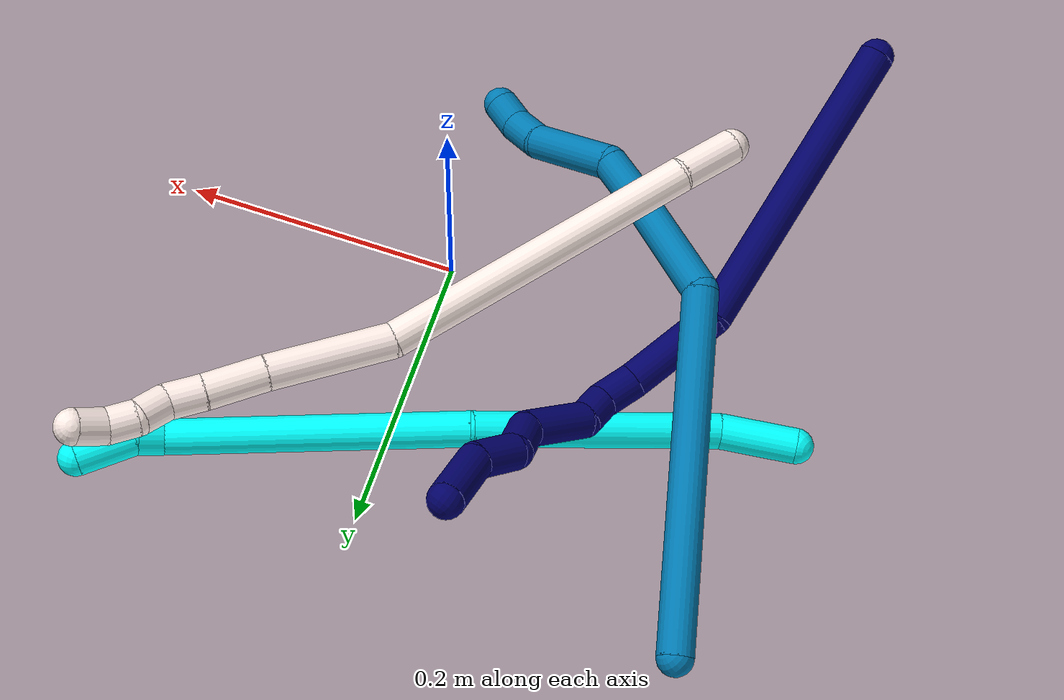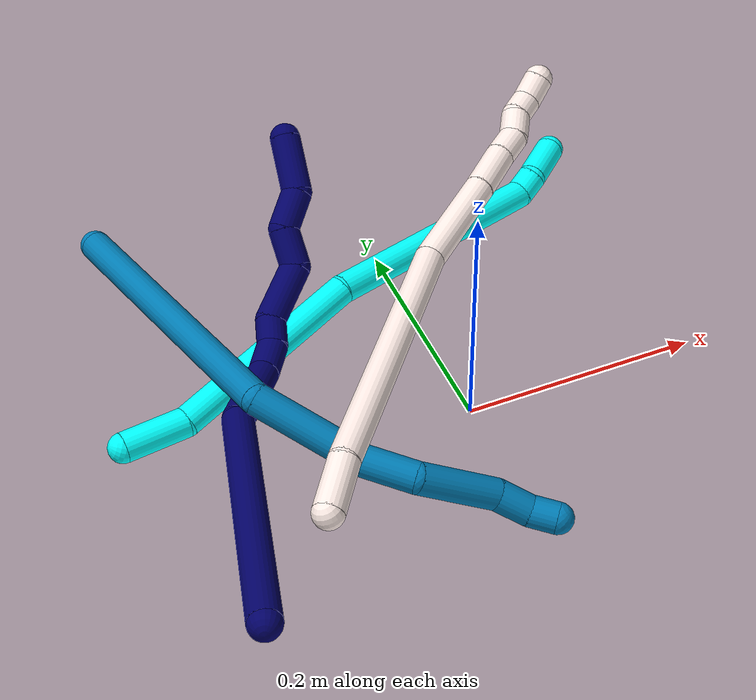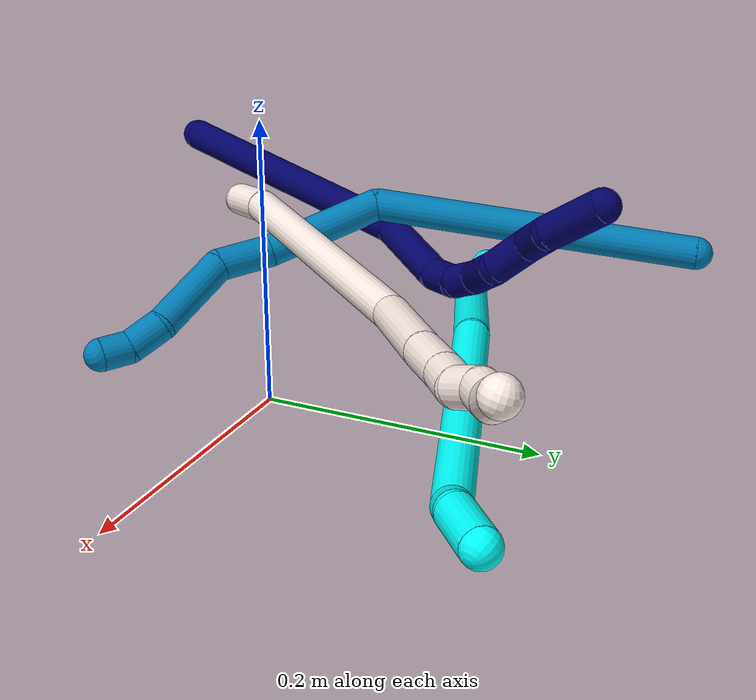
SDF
<sdf version="1.7">
 <world name="default">
  <model name="3">
   <static>0</static>
   <link name="3">
    <collision name="collision-cylinder-e_1_1_4">
     <pose>0.011632 0.007755 0.022831 -0.327449 0.449477 -0.075495</pose>
     <geometry><cylinder><radius>0.0125</radius><length>0.053542</length></cylinder></geometry>
     <surface>
      <friction><ode><mu>1.16</mu><mu2>1.16</mu2><slip1>0</slip1><slip2>0</slip2></ode></friction>
      <contact><ode><kp>1e+06</kp><kd>1</kd><max_vel>0</max_vel><min_depth>0.001</min_depth></ode></contact>
     </surface>
    </collision>
    <visual name="visual-cylinder-e_1_1_4">
     <pose>0.011632 0.007755 0.022831 -0.327449 0.449477 -0.075495</pose>
     <geometry><cylinder><radius>0.0125</radius><length>0.053542</length></cylinder></geometry>
     <material><ambient>0.003922 1 0.996078 1</ambient></material>
    </visual>
    <collision name="collision-cylinder-e_2_4_5">
     <pose>0.081481 0.044923 0.102981 -0.474108 0.734822 -0.185442</pose>
     <geometry><cylinder><radius>0.0125</radius><length>0.173663</length></cylinder></geometry>
     <surface>
      <friction><ode><mu>1.16</mu><mu2>1.16</mu2><slip1>0</slip1><slip2>0</slip2></ode></friction>
      <contact><ode><kp>1e+06</kp><kd>1</kd><max_vel>0</max_vel><min_depth>0.001</min_depth></ode></contact>
     </surface>
    </collision>
    <visual name="visual-cylinder-e_2_4_5">
     <pose>0.081481 0.044923 0.102981 -0.474108 0.734822 -0.185442</pose>
     <geometry><cylinder><radius>0.0125</radius><length>0.173663</length></cylinder></geometry>
     <material><ambient>0.003922 1 0.996078 1</ambient></material>
    </visual>
    <collision name="collision-cylinder-e_3_5_6">
     <pose>0.202326 0.090208 0.243627 -0.18822 0.635986 -0.062119</pose>
     <geometry><cylinder><radius>0.0125</radius><length>0.210882</length></cylinder></geometry>
     <surface>
      <friction><ode><mu>1.16</mu><mu2>1.16</mu2><slip1>0</slip1><slip2>0</slip2></ode></friction>
      <contact><ode><kp>1e+06</kp><kd>1</kd><max_vel>0</max_vel><min_depth>0.001</min_depth></ode></contact>
     </surface>
    </collision>
    <visual name="visual-cylinder-e_3_5_6">
     <pose>0.202326 0.090208 0.243627 -0.18822 0.635986 -0.062119</pose>
     <geometry><cylinder><radius>0.0125</radius><length>0.210882</length></cylinder></geometry>
     <material><ambient>0.003922 1 0.996078 1</ambient></material>
    </visual>
    <collision name="collision-cylinder-e_4_6_7">
     <pose>0.272541 0.110933 0.331905 -0.775597 0.830396 -0.356321</pose>
     <geometry><cylinder><radius>0.0125</radius><length>0.020552</length></cylinder></geometry>
     <surface>
      <friction><ode><mu>1.16</mu><mu2>1.16</mu2><slip1>0</slip1><slip2>0</slip2></ode></friction>
      <contact><ode><kp>1e+06</kp><kd>1</kd><max_vel>0</max_vel><min_depth>0.001</min_depth></ode></contact>
     </surface>
    </collision>
    <visual name="visual-cylinder-e_4_6_7">
     <pose>0.272541 0.110933 0.331905 -0.775597 0.830396 -0.356321</pose>
     <geometry><cylinder><radius>0.0125</radius><length>0.020552</length></cylinder></geometry>
     <material><ambient>0.003922 1 0.996078 1</ambient></material>
    </visual>
    <collision name="collision-cylinder-e_5_7_2">
     <pose>0.297929 0.117617 0.347217 -0.174827 1.03691 -0.099913</pose>
     <geometry><cylinder><radius>0.0125</radius><length>0.04136</length></cylinder></geometry>
     <surface>
      <friction><ode><mu>1.16</mu><mu2>1.16</mu2><slip1>0</slip1><slip2>0</slip2></ode></friction>
      <contact><ode><kp>1e+06</kp><kd>1</kd><max_vel>0</max_vel><min_depth>0.001</min_depth></ode></contact>
     </surface>
    </collision>
    <visual name="visual-cylinder-e_5_7_2">
     <pose>0.297929 0.117617 0.347217 -0.174827 1.03691 -0.099913</pose>
     <geometry><cylinder><radius>0.0125</radius><length>0.04136</length></cylinder></geometry>
     <material><ambient>0.003922 1 0.996078 1</ambient></material>
    </visual>
    <collision name="collision-sphere-2">
     <pose>0.315731 0.119447 0.357581 0 -0 0</pose>
     <geometry><sphere><radius>0.0125</radius></sphere></geometry>
     <surface>
      <friction><ode><mu>1.16</mu><mu2>1.16</mu2><slip1>0</slip1><slip2>0</slip2></ode></friction>
      <contact><ode><kp>1e+06</kp><kd>1</kd><max_vel>0</max_vel><min_depth>0.001</min_depth></ode></contact>
     </surface>
    </collision>
    <visual name="visual-sphere-2">
     <pose>0.315731 0.119447 0.357581 0 -0 0</pose>
     <geometry><sphere><radius>0.0125</radius></sphere></geometry>
     <material><ambient>0.003922 1 0.996078 1</ambient></material>
    </visual>
    <collision name="collision-sphere-7">
     <pose>0.280127 0.115786 0.336854 0 -0 0</pose>
     <geometry><sphere><radius>0.0125</radius></sphere></geometry>
     <surface>
      <friction><ode><mu>1.16</mu><mu2>1.16</mu2><slip1>0</slip1><slip2>0</slip2></ode></friction>
      <contact><ode><kp>1e+06</kp><kd>1</kd><max_vel>0</max_vel><min_depth>0.001</min_depth></ode></contact>
     </surface>
    </collision>
    <visual name="visual-sphere-7">
     <pose>0.280127 0.115786 0.336854 0 -0 0</pose>
     <geometry><sphere><radius>0.0125</radius></sphere></geometry>
     <material><ambient>0.003922 1 0.996078 1</ambient></material>
    </visual>
    <collision name="collision-sphere-6">
     <pose>0.264955 0.106079 0.326955 0 -0 0</pose>
     <geometry><sphere><radius>0.0125</radius></sphere></geometry>
     <surface>
      <friction><ode><mu>1.16</mu><mu2>1.16</mu2><slip1>0</slip1><slip2>0</slip2></ode></friction>
      <contact><ode><kp>1e+06</kp><kd>1</kd><max_vel>0</max_vel><min_depth>0.001</min_depth></ode></contact>
     </surface>
    </collision>
    <visual name="visual-sphere-6">
     <pose>0.264955 0.106079 0.326955 0 -0 0</pose>
     <geometry><sphere><radius>0.0125</radius></sphere></geometry>
     <material><ambient>0.003922 1 0.996078 1</ambient></material>
    </visual>
    <collision name="collision-sphere-5">
     <pose>0.139697 0.074336 0.160299 0 -0 0</pose>
     <geometry><sphere><radius>0.0125</radius></sphere></geometry>
     <surface>
      <friction><ode><mu>1.16</mu><mu2>1.16</mu2><slip1>0</slip1><slip2>0</slip2></ode></friction>
      <contact><ode><kp>1e+06</kp><kd>1</kd><max_vel>0</max_vel><min_depth>0.001</min_depth></ode></contact>
     </surface>
    </collision>
    <visual name="visual-sphere-5">
     <pose>0.139697 0.074336 0.160299 0 -0 0</pose>
     <geometry><sphere><radius>0.0125</radius></sphere></geometry>
     <material><ambient>0.003922 1 0.996078 1</ambient></material>
    </visual>
    <collision name="collision-sphere-1">
     <geometry><sphere><radius>0.0125</radius></sphere></geometry>
     <surface>
      <friction><ode><mu>1.16</mu><mu2>1.16</mu2><slip1>0</slip1><slip2>0</slip2></ode></friction>
      <contact><ode><kp>1e+06</kp><kd>1</kd><max_vel>0</max_vel><min_depth>0.001</min_depth></ode></contact>
     </surface>
    </collision>
    <visual name="visual-sphere-1">
     <geometry><sphere><radius>0.0125</radius></sphere></geometry>
     <material><ambient>0.003922 1 0.996078 1</ambient></material>
    </visual>
    <collision name="collision-sphere-4">
     <pose>0.023264 0.01551 0.045662 0 -0 0</pose>
     <geometry><sphere><radius>0.0125</radius></sphere></geometry>
     <surface>
      <friction><ode><mu>1.16</mu><mu2>1.16</mu2><slip1>0</slip1><slip2>0</slip2></ode></friction>
      <contact><ode><kp>1e+06</kp><kd>1</kd><max_vel>0</max_vel><min_depth>0.001</min_depth></ode></contact>
     </surface>
    </collision>
    <visual name="visual-sphere-4">
     <pose>0.023264 0.01551 0.045662 0 -0 0</pose>
     <geometry><sphere><radius>0.0125</radius></sphere></geometry>
     <material><ambient>0.003922 1 0.996078 1</ambient></material>
    </visual>
    <inertial>
     <pose>0.150727 0.068769 0.183331 0 -0 0</pose>
     <mass>0.5</mass>
     <inertia>
      <ixx>0.000898</ixx>
      <ixy>0</ixy>
      <ixz>0</ixz>
      <iyy>0.001123</iyy>
      <iyz>0</iyz>
      <izz>-0.001027</izz>
     </inertia>
    </inertial>
   </link>
   <pose>-0.271402 0.055576 0.018076 1.98915 -0.192715 1.23916</pose>
  </model>
  <model name="7">
   <static>0</static>
   <link name="7">
    <collision name="collision-cylinder-e_1_1_4">
     <pose>-0.009509 0.002655 -0.109314 -3.11731 -0.086745 2.59592</pose>
     <geometry><cylinder><radius>0.0125</radius><length>0.219518</length></cylinder></geometry>
     <surface>
      <friction><ode><mu>1.16</mu><mu2>1.16</mu2><slip1>0</slip1><slip2>0</slip2></ode></friction>
      <contact><ode><kp>1e+06</kp><kd>1</kd><max_vel>0</max_vel><min_depth>0.001</min_depth></ode></contact>
     </surface>
    </collision>
    <visual name="visual-cylinder-e_1_1_4">
     <pose>-0.009509 0.002655 -0.109314 -3.11731 -0.086745 2.59592</pose>
     <geometry><cylinder><radius>0.0125</radius><length>0.219518</length></cylinder></geometry>
     <material><ambient>0.003922 0 0.403922 1</ambient></material>
    </visual>
    <collision name="collision-cylinder-e_2_4_5">
     <pose>-0.0104 0.00068 -0.252207 3.00455 0.248961 2.13828</pose>
     <geometry><cylinder><radius>0.0125</radius><length>0.06995</length></cylinder></geometry>
     <surface>
      <friction><ode><mu>1.16</mu><mu2>1.16</mu2><slip1>0</slip1><slip2>0</slip2></ode></friction>
      <contact><ode><kp>1e+06</kp><kd>1</kd><max_vel>0</max_vel><min_depth>0.001</min_depth></ode></contact>
     </surface>
    </collision>
    <visual name="visual-cylinder-e_2_4_5">
     <pose>-0.0104 0.00068 -0.252207 3.00455 0.248961 2.13828</pose>
     <geometry><cylinder><radius>0.0125</radius><length>0.06995</length></cylinder></geometry>
     <material><ambient>0.003922 0 0.403922 1</ambient></material>
    </visual>
    <collision name="collision-cylinder-e_3_5_6">
     <pose>0.002742 -0.001032 -0.298529 -2.91649 0.333183 -1.95798</pose>
     <geometry><cylinder><radius>0.0125</radius><length>0.027668</length></cylinder></geometry>
     <surface>
      <friction><ode><mu>1.16</mu><mu2>1.16</mu2><slip1>0</slip1><slip2>0</slip2></ode></friction>
      <contact><ode><kp>1e+06</kp><kd>1</kd><max_vel>0</max_vel><min_depth>0.001</min_depth></ode></contact>
     </surface>
    </collision>
    <visual name="visual-cylinder-e_3_5_6">
     <pose>0.002742 -0.001032 -0.298529 -2.91649 0.333183 -1.95798</pose>
     <geometry><cylinder><radius>0.0125</radius><length>0.027668</length></cylinder></geometry>
     <material><ambient>0.003922 0 0.403922 1</ambient></material>
    </visual>
    <collision name="collision-cylinder-e_4_6_7">
     <pose>0.00841 0.008114 -0.320672 -2.55636 0.101103 -0.332778</pose>
     <geometry><cylinder><radius>0.0125</radius><length>0.022668</length></cylinder></geometry>
     <surface>
      <friction><ode><mu>1.16</mu><mu2>1.16</mu2><slip1>0</slip1><slip2>0</slip2></ode></friction>
      <contact><ode><kp>1e+06</kp><kd>1</kd><max_vel>0</max_vel><min_depth>0.001</min_depth></ode></contact>
     </surface>
    </collision>
    <visual name="visual-cylinder-e_4_6_7">
     <pose>0.00841 0.008114 -0.320672 -2.55636 0.101103 -0.332778</pose>
     <geometry><cylinder><radius>0.0125</radius><length>0.022668</length></cylinder></geometry>
     <material><ambient>0.003922 0 0.403922 1</ambient></material>
    </visual>
    <collision name="collision-cylinder-e_5_7_8">
     <pose>0.023559 0.026029 -0.345884 -2.50513 0.61894 -1.54097</pose>
     <geometry><cylinder><radius>0.0125</radius><length>0.048279</length></cylinder></geometry>
     <surface>
      <friction><ode><mu>1.16</mu><mu2>1.16</mu2><slip1>0</slip1><slip2>0</slip2></ode></friction>
      <contact><ode><kp>1e+06</kp><kd>1</kd><max_vel>0</max_vel><min_depth>0.001</min_depth></ode></contact>
     </surface>
    </collision>
    <visual name="visual-cylinder-e_5_7_8">
     <pose>0.023559 0.026029 -0.345884 -2.50513 0.61894 -1.54097</pose>
     <geometry><cylinder><radius>0.0125</radius><length>0.048279</length></cylinder></geometry>
     <material><ambient>0.003922 0 0.403922 1</ambient></material>
    </visual>
    <collision name="collision-cylinder-e_6_8_9">
     <pose>0.036459 0.05064 -0.371029 -2.19621 -0.069185 0.135145</pose>
     <geometry><cylinder><radius>0.0125</radius><length>0.031962</length></cylinder></geometry>
     <surface>
      <friction><ode><mu>1.16</mu><mu2>1.16</mu2><slip1>0</slip1><slip2>0</slip2></ode></friction>
      <contact><ode><kp>1e+06</kp><kd>1</kd><max_vel>0</max_vel><min_depth>0.001</min_depth></ode></contact>
     </surface>
    </collision>
    <visual name="visual-cylinder-e_6_8_9">
     <pose>0.036459 0.05064 -0.371029 -2.19621 -0.069185 0.135145</pose>
     <geometry><cylinder><radius>0.0125</radius><length>0.031962</length></cylinder></geometry>
     <material><ambient>0.003922 0 0.403922 1</ambient></material>
    </visual>
    <collision name="collision-cylinder-e_7_9_10">
     <pose>0.043807 0.072723 -0.391152 -2.43782 0.538408 -1.28883</pose>
     <geometry><cylinder><radius>0.0125</radius><length>0.032966</length></cylinder></geometry>
     <surface>
      <friction><ode><mu>1.16</mu><mu2>1.16</mu2><slip1>0</slip1><slip2>0</slip2></ode></friction>
      <contact><ode><kp>1e+06</kp><kd>1</kd><max_vel>0</max_vel><min_depth>0.001</min_depth></ode></contact>
     </surface>
    </collision>
    <visual name="visual-cylinder-e_7_9_10">
     <pose>0.043807 0.072723 -0.391152 -2.43782 0.538408 -1.28883</pose>
     <geometry><cylinder><radius>0.0125</radius><length>0.032966</length></cylinder></geometry>
     <material><ambient>0.003922 0 0.403922 1</ambient></material>
    </visual>
    <collision name="collision-cylinder-e_8_10_2">
     <pose>0.052382 0.098554 -0.418491 -2.35248 0.005235 -0.012572</pose>
     <geometry><cylinder><radius>0.0125</radius><length>0.046988</length></cylinder></geometry>
     <surface>
      <friction><ode><mu>1.16</mu><mu2>1.16</mu2><slip1>0</slip1><slip2>0</slip2></ode></friction>
      <contact><ode><kp>1e+06</kp><kd>1</kd><max_vel>0</max_vel><min_depth>0.001</min_depth></ode></contact>
     </surface>
    </collision>
    <visual name="visual-cylinder-e_8_10_2">
     <pose>0.052382 0.098554 -0.418491 -2.35248 0.005235 -0.012572</pose>
     <geometry><cylinder><radius>0.0125</radius><length>0.046988</length></cylinder></geometry>
     <material><ambient>0.003922 0 0.403922 1</ambient></material>
    </visual>
    <collision name="collision-sphere-2">
     <pose>0.052505 0.115229 -0.435042 0 -0 0</pose>
     <geometry><sphere><radius>0.0125</radius></sphere></geometry>
     <surface>
      <friction><ode><mu>1.16</mu><mu2>1.16</mu2><slip1>0</slip1><slip2>0</slip2></ode></friction>
      <contact><ode><kp>1e+06</kp><kd>1</kd><max_vel>0</max_vel><min_depth>0.001</min_depth></ode></contact>
     </surface>
    </collision>
    <visual name="visual-sphere-2">
     <pose>0.052505 0.115229 -0.435042 0 -0 0</pose>
     <geometry><sphere><radius>0.0125</radius></sphere></geometry>
     <material><ambient>0.003922 0 0.403922 1</ambient></material>
    </visual>
    <collision name="collision-sphere-10">
     <pose>0.052259 0.08188 -0.401941 0 -0 0</pose>
     <geometry><sphere><radius>0.0125</radius></sphere></geometry>
     <surface>
      <friction><ode><mu>1.16</mu><mu2>1.16</mu2><slip1>0</slip1><slip2>0</slip2></ode></friction>
      <contact><ode><kp>1e+06</kp><kd>1</kd><max_vel>0</max_vel><min_depth>0.001</min_depth></ode></contact>
     </surface>
    </collision>
    <visual name="visual-sphere-10">
     <pose>0.052259 0.08188 -0.401941 0 -0 0</pose>
     <geometry><sphere><radius>0.0125</radius></sphere></geometry>
     <material><ambient>0.003922 0 0.403922 1</ambient></material>
    </visual>
    <collision name="collision-sphere-9">
     <pose>0.035354 0.063565 -0.380363 0 -0 0</pose>
     <geometry><sphere><radius>0.0125</radius></sphere></geometry>
     <surface>
      <friction><ode><mu>1.16</mu><mu2>1.16</mu2><slip1>0</slip1><slip2>0</slip2></ode></friction>
      <contact><ode><kp>1e+06</kp><kd>1</kd><max_vel>0</max_vel><min_depth>0.001</min_depth></ode></contact>
     </surface>
    </collision>
    <visual name="visual-sphere-9">
     <pose>0.035354 0.063565 -0.380363 0 -0 0</pose>
     <geometry><sphere><radius>0.0125</radius></sphere></geometry>
     <material><ambient>0.003922 0 0.403922 1</ambient></material>
    </visual>
    <collision name="collision-sphere-4">
     <pose>-0.019018 0.005311 -0.218628 0 -0 0</pose>
     <geometry><sphere><radius>0.0125</radius></sphere></geometry>
     <surface>
      <friction><ode><mu>1.16</mu><mu2>1.16</mu2><slip1>0</slip1><slip2>0</slip2></ode></friction>
      <contact><ode><kp>1e+06</kp><kd>1</kd><max_vel>0</max_vel><min_depth>0.001</min_depth></ode></contact>
     </surface>
    </collision>
    <visual name="visual-sphere-4">
     <pose>-0.019018 0.005311 -0.218628 0 -0 0</pose>
     <geometry><sphere><radius>0.0125</radius></sphere></geometry>
     <material><ambient>0.003922 0 0.403922 1</ambient></material>
    </visual>
    <collision name="collision-sphere-1">
     <geometry><sphere><radius>0.0125</radius></sphere></geometry>
     <surface>
      <friction><ode><mu>1.16</mu><mu2>1.16</mu2><slip1>0</slip1><slip2>0</slip2></ode></friction>
      <contact><ode><kp>1e+06</kp><kd>1</kd><max_vel>0</max_vel><min_depth>0.001</min_depth></ode></contact>
     </surface>
    </collision>
    <visual name="visual-sphere-1">
     <geometry><sphere><radius>0.0125</radius></sphere></geometry>
     <material><ambient>0.003922 0 0.403922 1</ambient></material>
    </visual>
    <collision name="collision-sphere-8">
     <pose>0.037564 0.037715 -0.361696 0 -0 0</pose>
     <geometry><sphere><radius>0.0125</radius></sphere></geometry>
     <surface>
      <friction><ode><mu>1.16</mu><mu2>1.16</mu2><slip1>0</slip1><slip2>0</slip2></ode></friction>
      <contact><ode><kp>1e+06</kp><kd>1</kd><max_vel>0</max_vel><min_depth>0.001</min_depth></ode></contact>
     </surface>
    </collision>
    <visual name="visual-sphere-8">
     <pose>0.037564 0.037715 -0.361696 0 -0 0</pose>
     <geometry><sphere><radius>0.0125</radius></sphere></geometry>
     <material><ambient>0.003922 0 0.403922 1</ambient></material>
    </visual>
    <collision name="collision-sphere-5">
     <pose>-0.001783 -0.00395 -0.285786 0 -0 0</pose>
     <geometry><sphere><radius>0.0125</radius></sphere></geometry>
     <surface>
      <friction><ode><mu>1.16</mu><mu2>1.16</mu2><slip1>0</slip1><slip2>0</slip2></ode></friction>
      <contact><ode><kp>1e+06</kp><kd>1</kd><max_vel>0</max_vel><min_depth>0.001</min_depth></ode></contact>
     </surface>
    </collision>
    <visual name="visual-sphere-5">
     <pose>-0.001783 -0.00395 -0.285786 0 -0 0</pose>
     <geometry><sphere><radius>0.0125</radius></sphere></geometry>
     <material><ambient>0.003922 0 0.403922 1</ambient></material>
    </visual>
    <collision name="collision-sphere-6">
     <pose>0.007266 0.001885 -0.311273 0 -0 0</pose>
     <geometry><sphere><radius>0.0125</radius></sphere></geometry>
     <surface>
      <friction><ode><mu>1.16</mu><mu2>1.16</mu2><slip1>0</slip1><slip2>0</slip2></ode></friction>
      <contact><ode><kp>1e+06</kp><kd>1</kd><max_vel>0</max_vel><min_depth>0.001</min_depth></ode></contact>
     </surface>
    </collision>
    <visual name="visual-sphere-6">
     <pose>0.007266 0.001885 -0.311273 0 -0 0</pose>
     <geometry><sphere><radius>0.0125</radius></sphere></geometry>
     <material><ambient>0.003922 0 0.403922 1</ambient></material>
    </visual>
    <collision name="collision-sphere-7">
     <pose>0.009554 0.014343 -0.330072 0 -0 0</pose>
     <geometry><sphere><radius>0.0125</radius></sphere></geometry>
     <surface>
      <friction><ode><mu>1.16</mu><mu2>1.16</mu2><slip1>0</slip1><slip2>0</slip2></ode></friction>
      <contact><ode><kp>1e+06</kp><kd>1</kd><max_vel>0</max_vel><min_depth>0.001</min_depth></ode></contact>
     </surface>
    </collision>
    <visual name="visual-sphere-7">
     <pose>0.009554 0.014343 -0.330072 0 -0 0</pose>
     <geometry><sphere><radius>0.0125</radius></sphere></geometry>
     <material><ambient>0.003922 0 0.403922 1</ambient></material>
    </visual>
    <inertial>
     <pose>0.00732 0.021379 -0.236568 0 -0 0</pose>
     <mass>0.5</mass>
     <inertia>
      <ixx>-0.000283</ixx>
      <ixy>0</ixy>
      <ixz>0</ixz>
      <iyy>0.001253</iyy>
      <iyz>0</iyz>
      <izz>-1.2e-05</izz>
     </inertia>
    </inertial>
   </link>
   <pose>-0.24312 -0.20614 0.10797 1.37776 -0.228251 -0.287247</pose>
  </model>
  <model name="9">
   <static>0</static>
   <link name="9">
    <collision name="collision-cylinder-e_1_1_4">
     <pose>0.052882 -0.101783 0.047943 1.1306 0.439381 0.281423</pose>
     <geometry><cylinder><radius>0.0125</radius><length>0.248635</length></cylinder></geometry>
     <surface>
      <friction><ode><mu>1.16</mu><mu2>1.16</mu2><slip1>0</slip1><slip2>0</slip2></ode></friction>
      <contact><ode><kp>1e+06</kp><kd>1</kd><max_vel>0</max_vel><min_depth>0.001</min_depth></ode></contact>
     </surface>
    </collision>
    <visual name="visual-cylinder-e_1_1_4">
     <pose>0.052882 -0.101783 0.047943 1.1306 0.439381 0.281423</pose>
     <geometry><cylinder><radius>0.0125</radius><length>0.248635</length></cylinder></geometry>
     <material><ambient>0 0.490196 0.709804 1</ambient></material>
    </visual>
    <collision name="collision-cylinder-e_2_4_5">
     <pose>0.144998 -0.219219 0.113496 0.726604 1.02999 0.42385</pose>
     <geometry><cylinder><radius>0.0125</radius><length>0.09153</length></cylinder></geometry>
     <surface>
      <friction><ode><mu>1.16</mu><mu2>1.16</mu2><slip1>0</slip1><slip2>0</slip2></ode></friction>
      <contact><ode><kp>1e+06</kp><kd>1</kd><max_vel>0</max_vel><min_depth>0.001</min_depth></ode></contact>
     </surface>
    </collision>
    <visual name="visual-cylinder-e_2_4_5">
     <pose>0.144998 -0.219219 0.113496 0.726604 1.02999 0.42385</pose>
     <geometry><cylinder><radius>0.0125</radius><length>0.09153</length></cylinder></geometry>
     <material><ambient>0 0.490196 0.709804 1</ambient></material>
    </visual>
    <collision name="collision-cylinder-e_3_5_6">
     <pose>0.200242 -0.241015 0.14345 0.461772 0.859827 0.214745</pose>
     <geometry><cylinder><radius>0.0125</radius><length>0.042257</length></cylinder></geometry>
     <surface>
      <friction><ode><mu>1.16</mu><mu2>1.16</mu2><slip1>0</slip1><slip2>0</slip2></ode></friction>
      <contact><ode><kp>1e+06</kp><kd>1</kd><max_vel>0</max_vel><min_depth>0.001</min_depth></ode></contact>
     </surface>
    </collision>
    <visual name="visual-cylinder-e_3_5_6">
     <pose>0.200242 -0.241015 0.14345 0.461772 0.859827 0.214745</pose>
     <geometry><cylinder><radius>0.0125</radius><length>0.042257</length></cylinder></geometry>
     <material><ambient>0 0.490196 0.709804 1</ambient></material>
    </visual>
    <collision name="collision-cylinder-e_4_6_7">
     <pose>0.246086 -0.240633 0.169056 -0.457166 1.11084 -0.286777</pose>
     <geometry><cylinder><radius>0.0125</radius><length>0.06659</length></cylinder></geometry>
     <surface>
      <friction><ode><mu>1.16</mu><mu2>1.16</mu2><slip1>0</slip1><slip2>0</slip2></ode></friction>
      <contact><ode><kp>1e+06</kp><kd>1</kd><max_vel>0</max_vel><min_depth>0.001</min_depth></ode></contact>
     </surface>
    </collision>
    <visual name="visual-cylinder-e_4_6_7">
     <pose>0.246086 -0.240633 0.169056 -0.457166 1.11084 -0.286777</pose>
     <geometry><cylinder><radius>0.0125</radius><length>0.06659</length></cylinder></geometry>
     <material><ambient>0 0.490196 0.709804 1</ambient></material>
    </visual>
    <collision name="collision-cylinder-e_5_7_8">
     <pose>0.289414 -0.235818 0.187251 0.333407 1.20163 0.22962</pose>
     <geometry><cylinder><radius>0.0125</radius><length>0.028935</length></cylinder></geometry>
     <surface>
      <friction><ode><mu>1.16</mu><mu2>1.16</mu2><slip1>0</slip1><slip2>0</slip2></ode></friction>
      <contact><ode><kp>1e+06</kp><kd>1</kd><max_vel>0</max_vel><min_depth>0.001</min_depth></ode></contact>
     </surface>
    </collision>
    <visual name="visual-cylinder-e_5_7_8">
     <pose>0.289414 -0.235818 0.187251 0.333407 1.20163 0.22962</pose>
     <geometry><cylinder><radius>0.0125</radius><length>0.028935</length></cylinder></geometry>
     <material><ambient>0 0.490196 0.709804 1</ambient></material>
    </visual>
    <collision name="collision-cylinder-e_6_8_2">
     <pose>0.310992 -0.240512 0.199061 0.409597 0.823107 0.180828</pose>
     <geometry><cylinder><radius>0.0125</radius><length>0.022052</length></cylinder></geometry>
     <surface>
      <friction><ode><mu>1.16</mu><mu2>1.16</mu2><slip1>0</slip1><slip2>0</slip2></ode></friction>
      <contact><ode><kp>1e+06</kp><kd>1</kd><max_vel>0</max_vel><min_depth>0.001</min_depth></ode></contact>
     </surface>
    </collision>
    <visual name="visual-cylinder-e_6_8_2">
     <pose>0.310992 -0.240512 0.199061 0.409597 0.823107 0.180828</pose>
     <geometry><cylinder><radius>0.0125</radius><length>0.022052</length></cylinder></geometry>
     <material><ambient>0 0.490196 0.709804 1</ambient></material>
    </visual>
    <collision name="collision-sphere-2">
     <pose>0.319077 -0.243498 0.205938 0 -0 0</pose>
     <geometry><sphere><radius>0.0125</radius></sphere></geometry>
     <surface>
      <friction><ode><mu>1.16</mu><mu2>1.16</mu2><slip1>0</slip1><slip2>0</slip2></ode></friction>
      <contact><ode><kp>1e+06</kp><kd>1</kd><max_vel>0</max_vel><min_depth>0.001</min_depth></ode></contact>
     </surface>
    </collision>
    <visual name="visual-sphere-2">
     <pose>0.319077 -0.243498 0.205938 0 -0 0</pose>
     <geometry><sphere><radius>0.0125</radius></sphere></geometry>
     <material><ambient>0 0.490196 0.709804 1</ambient></material>
    </visual>
    <collision name="collision-sphere-4">
     <pose>0.105764 -0.203567 0.095885 0 -0 0</pose>
     <geometry><sphere><radius>0.0125</radius></sphere></geometry>
     <surface>
      <friction><ode><mu>1.16</mu><mu2>1.16</mu2><slip1>0</slip1><slip2>0</slip2></ode></friction>
      <contact><ode><kp>1e+06</kp><kd>1</kd><max_vel>0</max_vel><min_depth>0.001</min_depth></ode></contact>
     </surface>
    </collision>
    <visual name="visual-sphere-4">
     <pose>0.105764 -0.203567 0.095885 0 -0 0</pose>
     <geometry><sphere><radius>0.0125</radius></sphere></geometry>
     <material><ambient>0 0.490196 0.709804 1</ambient></material>
    </visual>
    <collision name="collision-sphere-1">
     <geometry><sphere><radius>0.0125</radius></sphere></geometry>
     <surface>
      <friction><ode><mu>1.16</mu><mu2>1.16</mu2><slip1>0</slip1><slip2>0</slip2></ode></friction>
      <contact><ode><kp>1e+06</kp><kd>1</kd><max_vel>0</max_vel><min_depth>0.001</min_depth></ode></contact>
     </surface>
    </collision>
    <visual name="visual-sphere-1">
     <geometry><sphere><radius>0.0125</radius></sphere></geometry>
     <material><ambient>0 0.490196 0.709804 1</ambient></material>
    </visual>
    <collision name="collision-sphere-8">
     <pose>0.302907 -0.237526 0.192184 0 -0 0</pose>
     <geometry><sphere><radius>0.0125</radius></sphere></geometry>
     <surface>
      <friction><ode><mu>1.16</mu><mu2>1.16</mu2><slip1>0</slip1><slip2>0</slip2></ode></friction>
      <contact><ode><kp>1e+06</kp><kd>1</kd><max_vel>0</max_vel><min_depth>0.001</min_depth></ode></contact>
     </surface>
    </collision>
    <visual name="visual-sphere-8">
     <pose>0.302907 -0.237526 0.192184 0 -0 0</pose>
     <geometry><sphere><radius>0.0125</radius></sphere></geometry>
     <material><ambient>0 0.490196 0.709804 1</ambient></material>
    </visual>
    <collision name="collision-sphere-5">
     <pose>0.184232 -0.234872 0.131106 0 -0 0</pose>
     <geometry><sphere><radius>0.0125</radius></sphere></geometry>
     <surface>
      <friction><ode><mu>1.16</mu><mu2>1.16</mu2><slip1>0</slip1><slip2>0</slip2></ode></friction>
      <contact><ode><kp>1e+06</kp><kd>1</kd><max_vel>0</max_vel><min_depth>0.001</min_depth></ode></contact>
     </surface>
    </collision>
    <visual name="visual-sphere-5">
     <pose>0.184232 -0.234872 0.131106 0 -0 0</pose>
     <geometry><sphere><radius>0.0125</radius></sphere></geometry>
     <material><ambient>0 0.490196 0.709804 1</ambient></material>
    </visual>
    <collision name="collision-sphere-6">
     <pose>0.216252 -0.247157 0.155793 0 -0 0</pose>
     <geometry><sphere><radius>0.0125</radius></sphere></geometry>
     <surface>
      <friction><ode><mu>1.16</mu><mu2>1.16</mu2><slip1>0</slip1><slip2>0</slip2></ode></friction>
      <contact><ode><kp>1e+06</kp><kd>1</kd><max_vel>0</max_vel><min_depth>0.001</min_depth></ode></contact>
     </surface>
    </collision>
    <visual name="visual-sphere-6">
     <pose>0.216252 -0.247157 0.155793 0 -0 0</pose>
     <geometry><sphere><radius>0.0125</radius></sphere></geometry>
     <material><ambient>0 0.490196 0.709804 1</ambient></material>
    </visual>
    <collision name="collision-sphere-7">
     <pose>0.275921 -0.234109 0.182318 0 -0 0</pose>
     <geometry><sphere><radius>0.0125</radius></sphere></geometry>
     <surface>
      <friction><ode><mu>1.16</mu><mu2>1.16</mu2><slip1>0</slip1><slip2>0</slip2></ode></friction>
      <contact><ode><kp>1e+06</kp><kd>1</kd><max_vel>0</max_vel><min_depth>0.001</min_depth></ode></contact>
     </surface>
    </collision>
    <visual name="visual-sphere-7">
     <pose>0.275921 -0.234109 0.182318 0 -0 0</pose>
     <geometry><sphere><radius>0.0125</radius></sphere></geometry>
     <material><ambient>0 0.490196 0.709804 1</ambient></material>
    </visual>
    <inertial>
     <pose>0.133002 -0.167415 0.098871 0 -0 0</pose>
     <mass>0.5</mass>
     <inertia>
      <ixx>0.001534</ixx>
      <ixy>0</ixy>
      <ixz>0</ixz>
      <iyy>0.001085</iyy>
      <iyz>0</iyz>
      <izz>0.000452</izz>
     </inertia>
    </inertial>
   </link>
   <pose>-0.236154 0.238712 0.067011 -0.290268 0.828789 -0.591175</pose>
  </model>
  <model name="11">
   <static>0</static>
   <link name="11">
    <collision name="collision-cylinder-e_1_1_4">
     <pose>0.020872 0.007208 -0.004178 -2.09615 1.191 -1.73216</pose>
     <geometry><cylinder><radius>0.0125</radius><length>0.044947</length></cylinder></geometry>
     <surface>
      <friction><ode><mu>1.16</mu><mu2>1.16</mu2><slip1>0</slip1><slip2>0</slip2></ode></friction>
      <contact><ode><kp>1e+06</kp><kd>1</kd><max_vel>0</max_vel><min_depth>0.001</min_depth></ode></contact>
     </surface>
    </collision>
    <visual name="visual-cylinder-e_1_1_4">
     <pose>0.020872 0.007208 -0.004178 -2.09615 1.191 -1.73216</pose>
     <geometry><cylinder><radius>0.0125</radius><length>0.044947</length></cylinder></geometry>
     <material><ambient>1 0.933333 0.909804 1</ambient></material>
    </visual>
    <collision name="collision-cylinder-e_2_4_5">
     <pose>0.151844 0.05063 -0.009677 -1.60725 1.25283 -1.28765</pose>
     <geometry><cylinder><radius>0.0125</radius><length>0.23182</length></cylinder></geometry>
     <surface>
      <friction><ode><mu>1.16</mu><mu2>1.16</mu2><slip1>0</slip1><slip2>0</slip2></ode></friction>
      <contact><ode><kp>1e+06</kp><kd>1</kd><max_vel>0</max_vel><min_depth>0.001</min_depth></ode></contact>
     </surface>
    </collision>
    <visual name="visual-cylinder-e_2_4_5">
     <pose>0.151844 0.05063 -0.009677 -1.60725 1.25283 -1.28765</pose>
     <geometry><cylinder><radius>0.0125</radius><length>0.23182</length></cylinder></geometry>
     <material><ambient>1 0.933333 0.909804 1</ambient></material>
    </visual>
    <collision name="collision-cylinder-e_3_5_6">
     <pose>0.298747 0.111178 -0.01408 -1.69678 0.982919 -1.09159</pose>
     <geometry><cylinder><radius>0.0125</radius><length>0.088457</length></cylinder></geometry>
     <surface>
      <friction><ode><mu>1.16</mu><mu2>1.16</mu2><slip1>0</slip1><slip2>0</slip2></ode></friction>
      <contact><ode><kp>1e+06</kp><kd>1</kd><max_vel>0</max_vel><min_depth>0.001</min_depth></ode></contact>
     </surface>
    </collision>
    <visual name="visual-cylinder-e_3_5_6">
     <pose>0.298747 0.111178 -0.01408 -1.69678 0.982919 -1.09159</pose>
     <geometry><cylinder><radius>0.0125</radius><length>0.088457</length></cylinder></geometry>
     <material><ambient>1 0.933333 0.909804 1</ambient></material>
    </visual>
    <collision name="collision-cylinder-e_4_6_7">
     <pose>0.353798 0.146279 -0.018696 -1.71233 1.03332 -1.15952</pose>
     <geometry><cylinder><radius>0.0125</radius><length>0.042486</length></cylinder></geometry>
     <surface>
      <friction><ode><mu>1.16</mu><mu2>1.16</mu2><slip1>0</slip1><slip2>0</slip2></ode></friction>
      <contact><ode><kp>1e+06</kp><kd>1</kd><max_vel>0</max_vel><min_depth>0.001</min_depth></ode></contact>
     </surface>
    </collision>
    <visual name="visual-cylinder-e_4_6_7">
     <pose>0.353798 0.146279 -0.018696 -1.71233 1.03332 -1.15952</pose>
     <geometry><cylinder><radius>0.0125</radius><length>0.042486</length></cylinder></geometry>
     <material><ambient>1 0.933333 0.909804 1</ambient></material>
    </visual>
    <collision name="collision-cylinder-e_5_7_8">
     <pose>0.382805 0.164152 -0.020879 -1.66189 0.985153 -1.06304</pose>
     <geometry><cylinder><radius>0.0125</radius><length>0.02582</length></cylinder></geometry>
     <surface>
      <friction><ode><mu>1.16</mu><mu2>1.16</mu2><slip1>0</slip1><slip2>0</slip2></ode></friction>
      <contact><ode><kp>1e+06</kp><kd>1</kd><max_vel>0</max_vel><min_depth>0.001</min_depth></ode></contact>
     </surface>
    </collision>
    <visual name="visual-cylinder-e_5_7_8">
     <pose>0.382805 0.164152 -0.020879 -1.66189 0.985153 -1.06304</pose>
     <geometry><cylinder><radius>0.0125</radius><length>0.02582</length></cylinder></geometry>
     <material><ambient>1 0.933333 0.909804 1</ambient></material>
    </visual>
    <collision name="collision-cylinder-e_6_8_9">
     <pose>0.403472 0.174451 -0.026051 -2.52694 1.0613 -2.14997</pose>
     <geometry><cylinder><radius>0.0125</radius><length>0.022701</length></cylinder></geometry>
     <surface>
      <friction><ode><mu>1.16</mu><mu2>1.16</mu2><slip1>0</slip1><slip2>0</slip2></ode></friction>
      <contact><ode><kp>1e+06</kp><kd>1</kd><max_vel>0</max_vel><min_depth>0.001</min_depth></ode></contact>
     </surface>
    </collision>
    <visual name="visual-cylinder-e_6_8_9">
     <pose>0.403472 0.174451 -0.026051 -2.52694 1.0613 -2.14997</pose>
     <geometry><cylinder><radius>0.0125</radius><length>0.022701</length></cylinder></geometry>
     <material><ambient>1 0.933333 0.909804 1</ambient></material>
    </visual>
    <collision name="collision-cylinder-e_7_9_10">
     <pose>0.422249 0.183359 -0.031293 -1.69596 0.994719 -1.10343</pose>
     <geometry><cylinder><radius>0.0125</radius><length>0.02115</length></cylinder></geometry>
     <surface>
      <friction><ode><mu>1.16</mu><mu2>1.16</mu2><slip1>0</slip1><slip2>0</slip2></ode></friction>
      <contact><ode><kp>1e+06</kp><kd>1</kd><max_vel>0</max_vel><min_depth>0.001</min_depth></ode></contact>
     </surface>
    </collision>
    <visual name="visual-cylinder-e_7_9_10">
     <pose>0.422249 0.183359 -0.031293 -1.69596 0.994719 -1.10343</pose>
     <geometry><cylinder><radius>0.0125</radius><length>0.02115</length></cylinder></geometry>
     <material><ambient>1 0.933333 0.909804 1</ambient></material>
    </visual>
    <collision name="collision-cylinder-e_8_10_2">
     <pose>0.438182 0.196549 -0.036717 -2.13257 0.674685 -1.13182</pose>
     <geometry><cylinder><radius>0.0125</radius><length>0.02262</length></cylinder></geometry>
     <surface>
      <friction><ode><mu>1.16</mu><mu2>1.16</mu2><slip1>0</slip1><slip2>0</slip2></ode></friction>
      <contact><ode><kp>1e+06</kp><kd>1</kd><max_vel>0</max_vel><min_depth>0.001</min_depth></ode></contact>
     </surface>
    </collision>
    <visual name="visual-cylinder-e_8_10_2">
     <pose>0.438182 0.196549 -0.036717 -2.13257 0.674685 -1.13182</pose>
     <geometry><cylinder><radius>0.0125</radius><length>0.02262</length></cylinder></geometry>
     <material><ambient>1 0.933333 0.909804 1</ambient></material>
    </visual>
    <collision name="collision-sphere-2">
     <pose>0.445247 0.204023 -0.041422 0 -0 0</pose>
     <geometry><sphere><radius>0.0125</radius></sphere></geometry>
     <surface>
      <friction><ode><mu>1.16</mu><mu2>1.16</mu2><slip1>0</slip1><slip2>0</slip2></ode></friction>
      <contact><ode><kp>1e+06</kp><kd>1</kd><max_vel>0</max_vel><min_depth>0.001</min_depth></ode></contact>
     </surface>
    </collision>
    <visual name="visual-sphere-2">
     <pose>0.445247 0.204023 -0.041422 0 -0 0</pose>
     <geometry><sphere><radius>0.0125</radius></sphere></geometry>
     <material><ambient>1 0.933333 0.909804 1</ambient></material>
    </visual>
    <collision name="collision-sphere-10">
     <pose>0.431117 0.189074 -0.032012 0 -0 0</pose>
     <geometry><sphere><radius>0.0125</radius></sphere></geometry>
     <surface>
      <friction><ode><mu>1.16</mu><mu2>1.16</mu2><slip1>0</slip1><slip2>0</slip2></ode></friction>
      <contact><ode><kp>1e+06</kp><kd>1</kd><max_vel>0</max_vel><min_depth>0.001</min_depth></ode></contact>
     </surface>
    </collision>
    <visual name="visual-sphere-10">
     <pose>0.431117 0.189074 -0.032012 0 -0 0</pose>
     <geometry><sphere><radius>0.0125</radius></sphere></geometry>
     <material><ambient>1 0.933333 0.909804 1</ambient></material>
    </visual>
    <collision name="collision-sphere-9">
     <pose>0.413381 0.177644 -0.030574 0 -0 0</pose>
     <geometry><sphere><radius>0.0125</radius></sphere></geometry>
     <surface>
      <friction><ode><mu>1.16</mu><mu2>1.16</mu2><slip1>0</slip1><slip2>0</slip2></ode></friction>
      <contact><ode><kp>1e+06</kp><kd>1</kd><max_vel>0</max_vel><min_depth>0.001</min_depth></ode></contact>
     </surface>
    </collision>
    <visual name="visual-sphere-9">
     <pose>0.413381 0.177644 -0.030574 0 -0 0</pose>
     <geometry><sphere><radius>0.0125</radius></sphere></geometry>
     <material><ambient>1 0.933333 0.909804 1</ambient></material>
    </visual>
    <collision name="collision-sphere-4">
     <pose>0.041744 0.014416 -0.008357 0 -0 0</pose>
     <geometry><sphere><radius>0.0125</radius></sphere></geometry>
     <surface>
      <friction><ode><mu>1.16</mu><mu2>1.16</mu2><slip1>0</slip1><slip2>0</slip2></ode></friction>
      <contact><ode><kp>1e+06</kp><kd>1</kd><max_vel>0</max_vel><min_depth>0.001</min_depth></ode></contact>
     </surface>
    </collision>
    <visual name="visual-sphere-4">
     <pose>0.041744 0.014416 -0.008357 0 -0 0</pose>
     <geometry><sphere><radius>0.0125</radius></sphere></geometry>
     <material><ambient>1 0.933333 0.909804 1</ambient></material>
    </visual>
    <collision name="collision-sphere-1">
     <geometry><sphere><radius>0.0125</radius></sphere></geometry>
     <surface>
      <friction><ode><mu>1.16</mu><mu2>1.16</mu2><slip1>0</slip1><slip2>0</slip2></ode></friction>
      <contact><ode><kp>1e+06</kp><kd>1</kd><max_vel>0</max_vel><min_depth>0.001</min_depth></ode></contact>
     </surface>
    </collision>
    <visual name="visual-sphere-1">
     <geometry><sphere><radius>0.0125</radius></sphere></geometry>
     <material><ambient>1 0.933333 0.909804 1</ambient></material>
    </visual>
    <collision name="collision-sphere-8">
     <pose>0.393563 0.171259 -0.021528 0 -0 0</pose>
     <geometry><sphere><radius>0.0125</radius></sphere></geometry>
     <surface>
      <friction><ode><mu>1.16</mu><mu2>1.16</mu2><slip1>0</slip1><slip2>0</slip2></ode></friction>
      <contact><ode><kp>1e+06</kp><kd>1</kd><max_vel>0</max_vel><min_depth>0.001</min_depth></ode></contact>
     </surface>
    </collision>
    <visual name="visual-sphere-8">
     <pose>0.393563 0.171259 -0.021528 0 -0 0</pose>
     <geometry><sphere><radius>0.0125</radius></sphere></geometry>
     <material><ambient>1 0.933333 0.909804 1</ambient></material>
    </visual>
    <collision name="collision-sphere-5">
     <pose>0.261944 0.086843 -0.010998 0 -0 0</pose>
     <geometry><sphere><radius>0.0125</radius></sphere></geometry>
     <surface>
      <friction><ode><mu>1.16</mu><mu2>1.16</mu2><slip1>0</slip1><slip2>0</slip2></ode></friction>
      <contact><ode><kp>1e+06</kp><kd>1</kd><max_vel>0</max_vel><min_depth>0.001</min_depth></ode></contact>
     </surface>
    </collision>
    <visual name="visual-sphere-5">
     <pose>0.261944 0.086843 -0.010998 0 -0 0</pose>
     <geometry><sphere><radius>0.0125</radius></sphere></geometry>
     <material><ambient>1 0.933333 0.909804 1</ambient></material>
    </visual>
    <collision name="collision-sphere-6">
     <pose>0.33555 0.135512 -0.017162 0 -0 0</pose>
     <geometry><sphere><radius>0.0125</radius></sphere></geometry>
     <surface>
      <friction><ode><mu>1.16</mu><mu2>1.16</mu2><slip1>0</slip1><slip2>0</slip2></ode></friction>
      <contact><ode><kp>1e+06</kp><kd>1</kd><max_vel>0</max_vel><min_depth>0.001</min_depth></ode></contact>
     </surface>
    </collision>
    <visual name="visual-sphere-6">
     <pose>0.33555 0.135512 -0.017162 0 -0 0</pose>
     <geometry><sphere><radius>0.0125</radius></sphere></geometry>
     <material><ambient>1 0.933333 0.909804 1</ambient></material>
    </visual>
    <collision name="collision-sphere-7">
     <pose>0.372046 0.157046 -0.02023 0 -0 0</pose>
     <geometry><sphere><radius>0.0125</radius></sphere></geometry>
     <surface>
      <friction><ode><mu>1.16</mu><mu2>1.16</mu2><slip1>0</slip1><slip2>0</slip2></ode></friction>
      <contact><ode><kp>1e+06</kp><kd>1</kd><max_vel>0</max_vel><min_depth>0.001</min_depth></ode></contact>
     </surface>
    </collision>
    <visual name="visual-sphere-7">
     <pose>0.372046 0.157046 -0.02023 0 -0 0</pose>
     <geometry><sphere><radius>0.0125</radius></sphere></geometry>
     <material><ambient>1 0.933333 0.909804 1</ambient></material>
    </visual>
    <inertial>
     <pose>0.230963 0.089265 -0.014188 0 -0 0</pose>
     <mass>0.5</mass>
     <inertia>
      <ixx>-0.000212</ixx>
      <ixy>0</ixy>
      <ixz>0</ixz>
      <iyy>0.000664</iyy>
      <iyz>0</iyz>
      <izz>-0.001442</izz>
     </inertia>
    </inertial>
   </link>
   <pose>-0.166321 -0.118445 0.082853 2.81198 0.143149 1.18449</pose>
  </model>
 </world>
</sdf>
